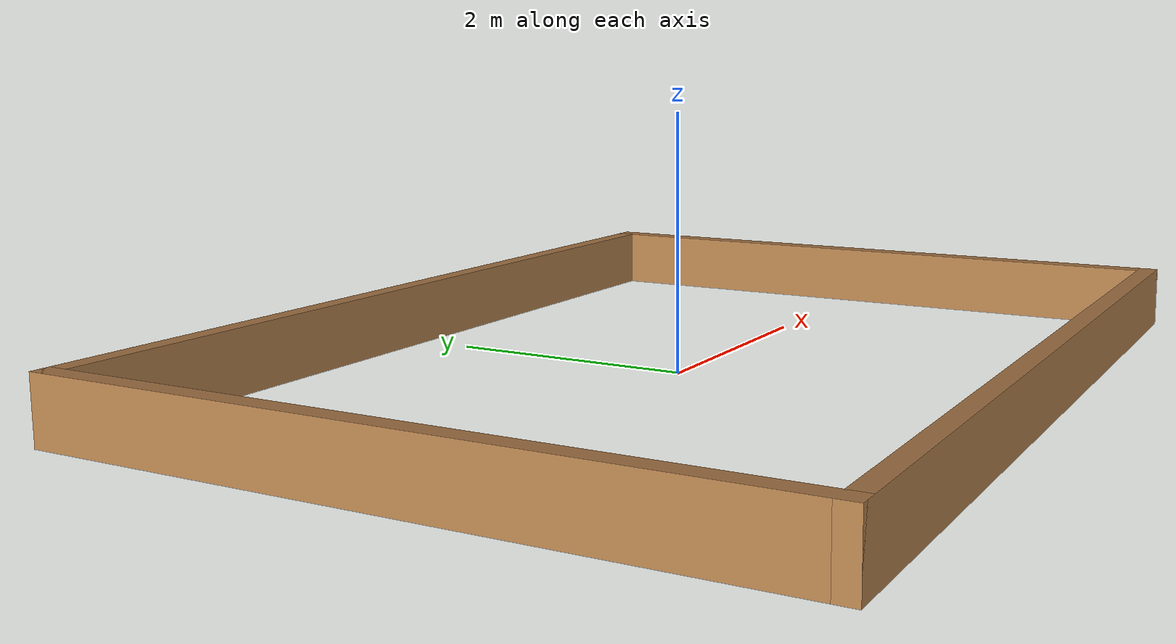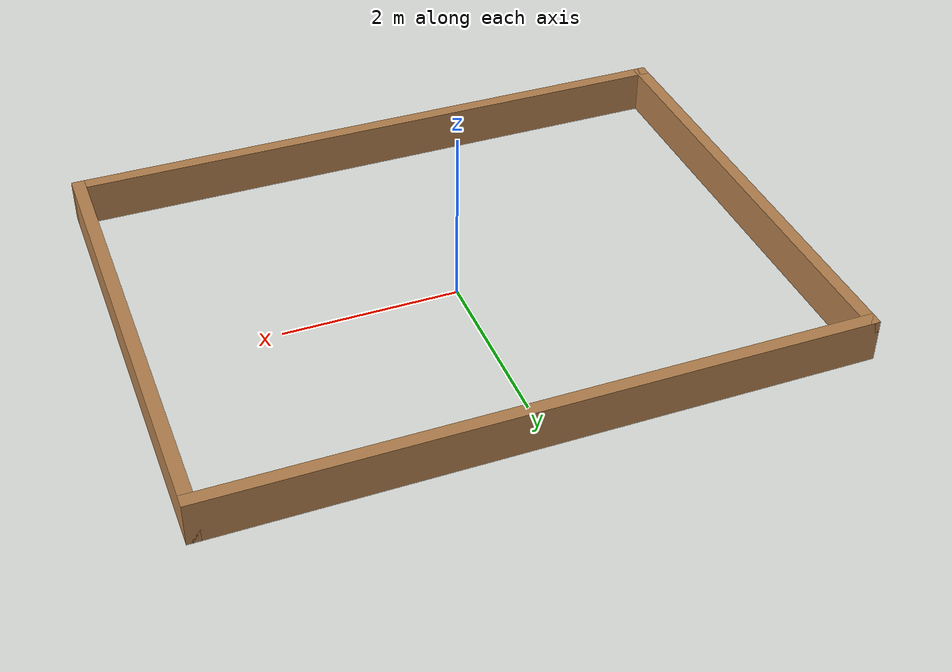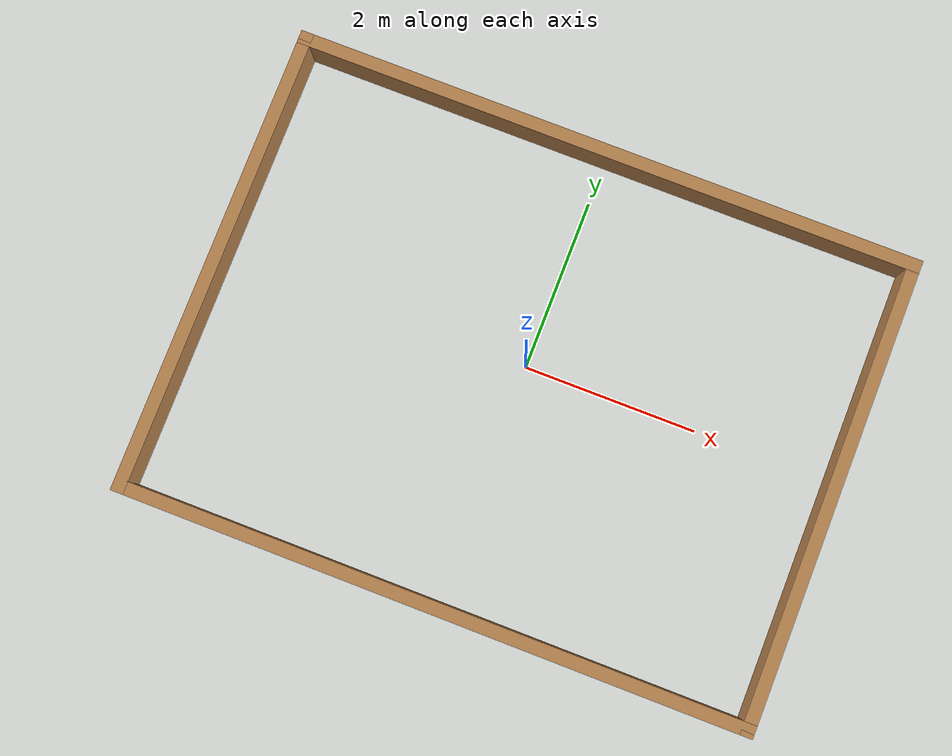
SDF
<?xml version='1.0'?>
<sdf version='1.7'>
  <model name='field_walls'>
    <pose>-0.007 -0.157 0 0 -0 0</pose>
    <link name='Wall_1'>
      <collision name='Wall_1_Collision'>
        <geometry>
          <box>
            <size>7.35 0.15 0.5</size>
          </box>
        </geometry>
        <pose>0 0 0.25 0 -0 0</pose>
      </collision>
      <visual name='Wall_1_Visual'>
        <pose>0 0 0.25 0 -0 0</pose>
        <geometry>
          <box>
            <size>7.35 0.15 0.5</size>
          </box>
        </geometry>
        <material>
          <script>
            <uri>file://media/materials/scripts/gazebo.material</uri>
            <name>Gazebo/Wood</name>
          </script>
          <ambient>1 1 1 1</ambient>
        </material>
        <meta>
          <layer>0</layer>
        </meta>
      </visual>
      <pose>0 -2.675 0 0 -0 0</pose>
    </link>
    <link name='Wall_10'>
      <collision name='Wall_10_Collision'>
        <geometry>
          <box>
            <size>7.35 0.15 0.5</size>
          </box>
        </geometry>
        <pose>0 0 0.25 0 -0 0</pose>
      </collision>
      <visual name='Wall_10_Visual'>
        <pose>0 0 0.25 0 -0 0</pose>
        <geometry>
          <box>
            <size>7.35 0.15 0.5</size>
          </box>
        </geometry>
        <material>
          <script>
            <uri>file://media/materials/scripts/gazebo.material</uri>
            <name>Gazebo/Wood</name>
          </script>
          <ambient>1 1 1 1</ambient>
        </material>
        <meta>
          <layer>0</layer>
        </meta>
      </visual>
      <pose>0 2.675 0 0 -0 0</pose>
    </link>
    <link name='Wall_12'>
      <collision name='Wall_12_Collision'>
        <geometry>
          <box>
            <size>5.5 0.15 0.5</size>
          </box>
        </geometry>
        <pose>0 0 0.25 0 -0 0</pose>
      </collision>
      <visual name='Wall_12_Visual'>
        <pose>0 0 0.25 0 -0 0</pose>
        <geometry>
          <box>
            <size>5.5 0.15 0.5</size>
          </box>
        </geometry>
        <material>
          <script>
            <uri>file://media/materials/scripts/gazebo.material</uri>
            <name>Gazebo/Wood</name>
          </script>
          <ambient>1 1 1 1</ambient>
        </material>
        <meta>
          <layer>0</layer>
        </meta>
      </visual>
      <pose>3.6 0 0 0 -0 -1.5708</pose>
    </link>
    <link name='Wall_9'>
      <collision name='Wall_9_Collision'>
        <geometry>
          <box>
            <size>5.5 0.15 0.5</size>
          </box>
        </geometry>
        <pose>0 0 0.25 0 -0 0</pose>
      </collision>
      <visual name='Wall_9_Visual'>
        <pose>0 0 0.25 0 -0 0</pose>
        <geometry>
          <box>
            <size>5.5 0.15 0.5</size>
          </box>
        </geometry>
        <material>
          <script>
            <uri>file://media/materials/scripts/gazebo.material</uri>
            <name>Gazebo/Wood</name>
          </script>
          <ambient>1 1 1 1</ambient>
        </material>
        <meta>
          <layer>0</layer>
        </meta>
      </visual>
      <pose>-3.6 0 0 0 -0 1.5708</pose>
    </link>
    <static>1</static>
  </model>
</sdf>
